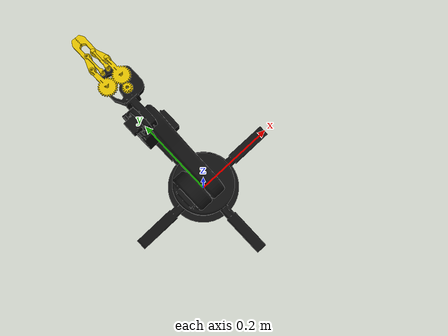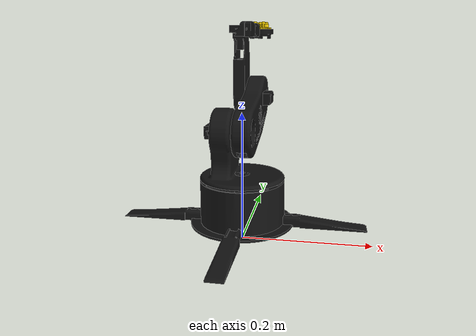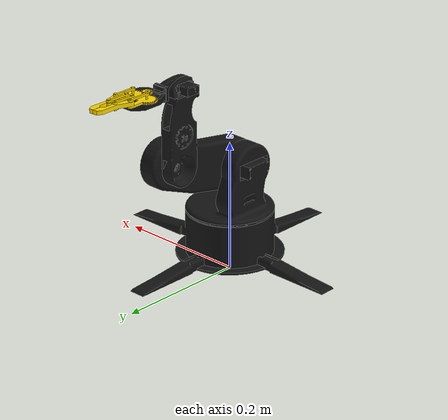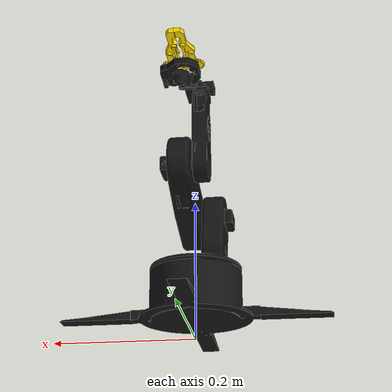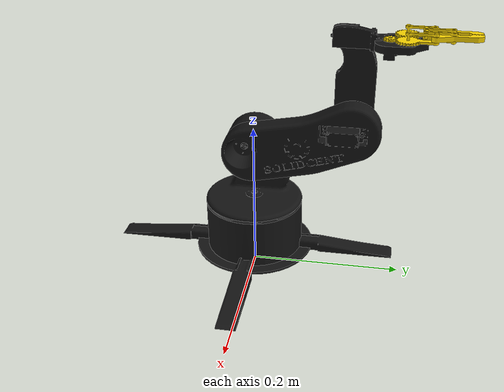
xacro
<?xml version="1.0"?>
<robot xmlns:xacro="http://www.ros.org/wiki/xacro" name="armbot">

    <!-- Launch arguments -->
  <xacro:arg name="is_sim" default="true"/>

  <!-- ===================== PROPERTIES ===================== -->
  <xacro:property name="mesh_dir" value="package://armbot_description/meshes"/>

  <!-- Arm limits: PLACEHOLDERS, set from your hardware -->
  <xacro:property name="arm_lower" value="-1.5707079632"/>
  <xacro:property name="arm_upper" value="1.5707079632"/>
  <xacro:property name="arm_effort" value="5.0"/>
  <xacro:property name="arm_velocity" value="2.0"/>

  <!-- Gear teeth (use decimals so the division stays a float) -->
  <xacro:property name="centre_teeth" value="12.0"/>
  <xacro:property name="side_teeth" value="24.0"/>
  <!-- side gear rotation per 1 rad of centre gear = 12/24 = 0.5 -->
  <xacro:property name="gear_ratio" value="${centre_teeth / side_teeth}"/>

  <!-- Max rotation of each SIDE gear (rad). Measure on the real part.
       The centre gear can turn side_max / gear_ratio. -->
  <xacro:property name="side_max" value="0.9"/>
  <xacro:property name="gripper_effort" value="2.0"/>
  <xacro:property name="gripper_velocity" value="2.0"/>

  <!-- Gear train: centre -> right_gear -> left_gear.
       right_gear turns opposite to the centre, left_gear turns with it.
       If the gripper opens when it should close, flip BOTH signs. -->
  <xacro:property name="right_ratio" value="${-gear_ratio}"/>
  <xacro:property name="left_ratio" value="${gear_ratio}"/>

  <xacro:property name="rfJ_x" value="-1.5231"/>
  <xacro:property name="rfJ_y" value="-0.94735"/>
  <xacro:property name="rfJ_z" value="-0.79558"/>
  <xacro:property name="rfP_x" value="0.0004"/>
  <xacro:property name="rfP_y" value="0.0036"/>
  <xacro:property name="rfP_z" value="-0.031"/>

  <!-- ===================== MATERIALS ===================== -->
  <material name="armbot_black">
    <color rgba="0.08 0.08 0.08 1"/>
  </material>
  <material name="armbot_yellow">
    <color rgba="1.0 0.85 0.0 1"/>
  </material>

  <!-- ===================== MACROS ===================== -->
  <!-- name = link name, mesh = STL file name (without .STL), mat = material.
       ox/oy/oz shift mesh + inertia (default 0). -->
  <xacro:macro name="part" params="name mesh mat mass cx cy cz ixx ixy ixz iyy iyz izz ox:=0 oy:=0 oz:=0">
    <link name="${name}">
      <inertial>
        <origin xyz="${cx+ox} ${cy+oy} ${cz+oz}" rpy="0 0 0"/>
        <mass value="${mass}"/>
        <inertia ixx="${ixx}" ixy="${ixy}" ixz="${ixz}" iyy="${iyy}" iyz="${iyz}" izz="${izz}"/>
      </inertial>
      <visual>
        <origin xyz="${ox} ${oy} ${oz}" rpy="0 0 0"/>
        <geometry>
          <mesh filename="${mesh_dir}/${mesh}.STL"/>
        </geometry>
        <material name="${mat}"/>
      </visual>
      <collision>
        <origin xyz="${ox} ${oy} ${oz}" rpy="0 0 0"/>
        <geometry>
          <mesh filename="${mesh_dir}/${mesh}.STL"/>
        </geometry>
      </collision>
    </link>
  </xacro:macro>

  <xacro:macro name="rev_joint" params="name parent child xyz rpy axis lower upper effort velocity">
    <joint name="${name}" type="revolute">
      <origin xyz="${xyz}" rpy="${rpy}"/>
      <parent link="${parent}"/>
      <child link="${child}"/>
      <axis xyz="${axis}"/>
      <limit lower="${lower}" upper="${upper}" effort="${effort}" velocity="${velocity}"/>
    </joint>
  </xacro:macro>

  <!-- Gripper joint that follows centre_gear_joint (position = multiplier * master) -->
  <xacro:macro name="mimic_joint" params="name parent child xyz axis multiplier">
    <joint name="${name}" type="revolute">
      <origin xyz="${xyz}" rpy="0 0 0"/>
      <parent link="${parent}"/>
      <child link="${child}"/>
      <axis xyz="${axis}"/>
      <limit lower="${-side_max}" upper="${side_max}" effort="${gripper_effort}" velocity="${gripper_velocity}"/>
      <mimic joint="centre_gear_joint" multiplier="${multiplier}" offset="0"/>
    </joint>
  </xacro:macro>

  <!-- ===================== ARM (black) ===================== -->

  <xacro:part name="base_link" mesh="base_link" mat="armbot_black" mass="0.253625690516099"
  cx="1.16795410576227" cy="-1.19443219421231" cz="1.0402184329833"
  ixx="0.000345676528275635" ixy="-1.42994849903459E-11" ixz="5.63068009978521E-07"
  iyy="0.000370214955205273" iyz="-6.71141640350259E-13" izz="0.000597520603618796"
  ox="-1.1668" oy="1.1944" oz="-1.0922"/>

  <xacro:part name="link_1" mesh="link_1" mat="armbot_black" mass="0.250197167053515"
    cx="-0.0215211072658357" cy="0.0430695398034247" cz="-0.00108836930956224"
    ixx="0.000387282666497665" ixy="6.15407457424493E-05" ixz="-3.46302530180302E-06"
    iyy="0.000268259820543635" iyz="-1.32908920501728E-05" izz="0.000352647694230243"/>

  <xacro:part name="link_2" mesh="link_2" mat="armbot_black" mass="0.356315141211562"
    cx="0.00415754178402006" cy="0.0334166930976645" cz="-0.0849568948718107"
    ixx="0.00113352470550218" ixy="-2.7968240778833E-07" ixz="2.42342338737527E-06"
    iyy="0.00095573117462755" iyz="0.000218097697144784" izz="0.000236706859639392"/>

  <xacro:part name="link_3" mesh="link_3" mat="armbot_black" mass="0.0800685236228001"
    cx="-0.00963810517974717" cy="0.0448134717292477" cz="0.00127738631341434"
    ixx="0.000103339776550584" ixy="1.44146194901786E-06" ixz="4.44037869019305E-08"
    iyy="1.99036931851636E-05" iyz="-9.62210474096671E-07" izz="8.94407168149881E-05"/>

  <xacro:part name="link_4" mesh="link_4" mat="armbot_black" mass="0.0141278688267757"
    cx="0.000225769158099132" cy="0.0109433019822112" cz="0.0159340910990631"
    ixx="1.95554546448009E-06" ixy="-1.01498132299861E-07" ixz="-3.21413853728938E-08"
    iyy="1.73483984205993E-06" iyz="-9.03686983886345E-08" izz="6.57133363136111E-07"/>

  <xacro:rev_joint name="joint_1" parent="base_link" child="link_1"
  xyz="0 0 0" rpy="1.5708 0 0" axis="0 1 0"
  lower="${arm_lower}" upper="${arm_upper}" effort="${arm_effort}" velocity="${arm_velocity}"/>

  <xacro:rev_joint name="joint_2" parent="link_1" child="link_2"
    xyz="0 0.05693 0.016527" rpy="0 0 0" axis="1 0 0"
    lower="-0.5000" upper="${arm_upper}" effort="${arm_effort}" velocity="${arm_velocity}"/>

  <xacro:rev_joint name="joint_3" parent="link_2" child="link_3"
    xyz="-0.013803 0.051049 -0.14291" rpy="0 0 0" axis="1 0 0"
    lower="${arm_lower}" upper="${arm_upper}" effort="${arm_effort}" velocity="${arm_velocity}"/>

  <xacro:rev_joint name="joint_4" parent="link_3" child="link_4"
    xyz="-0.010368 0.10446 -0.0051605" rpy="0 0 0" axis="0 1 0"
    lower="${arm_lower}" upper="1.00000" effort="${arm_effort}" velocity="${arm_velocity}"/>

  <xacro:rev_joint name="joint_5" parent="link_4" child="link_5"
    xyz="-1.2789E-05 0.012713 0.022025" rpy="0 0 0" axis="0.99987 -0.013485 0.0083643"
    lower="-0.5000" upper="${arm_upper}" effort="${arm_effort}" velocity="${arm_velocity}"/>

  <!-- ===================== GRIPPER (yellow) ===================== -->
  <!-- link_5 = gripper base -->
  <xacro:part name="link_5" mesh="link_5" mat="armbot_black" mass="0.0396652700264269"
    cx="0.0218656936610016" cy="-0.00374466162024301" cz="-0.0470615006679833"
    ixx="1.08694820116733E-05" ixy="1.32353258694541E-07" ixz="-9.63818228842845E-07"
    iyy="1.59273897038247E-05" iyz="8.71439477412276E-08" izz="6.73665879115032E-06"/>

  <xacro:part name="centre_gear" mesh="centre_gear" mat="armbot_yellow" mass="0.00124932165530755"
    cx="-1.31173336841428E-05" cy="-0.000887697927836717" cz="1.26379266516263E-05"
    ixx="2.66140170996426E-08" ixy="1.86974536589879E-10" ixz="1.04086965182943E-11"
    iyy="4.08900779818099E-08" iyz="6.22753631405733E-11" izz="2.65077841105056E-08"/>

  <!-- NOTE: name and mesh are swapped on purpose (your STL files carry the old labels) -->
  <xacro:part name="right_gear" mesh="left_gear" mat="armbot_yellow" mass="0.00277395733190241"
    cx="0.000222091023160065" cy="0.00371743558174109" cz="-0.00755068369917078"
    ixx="3.52388443037872E-07" ixy="9.95992272458526E-10" ixz="6.00819019534792E-09"
    iyy="4.26226210044565E-07" iyz="-8.10283392068617E-11" izz="8.83702757148541E-08"/>

  <xacro:part name="left_gear" mesh="right_gear" mat="armbot_yellow" mass="0.00264236087567158"
    cx="-4.23348725402395E-05" cy="0.00359328282440807" cz="-0.00643682968782522"
    ixx="3.49270174814913E-07" ixy="1.02779233447843E-09" ixz="-3.77176389314444E-09"
    iyy="4.2546545298723E-07" iyz="5.08681286544487E-11" izz="8.53567917753674E-08"/>

  <!-- right_finger (STL: left_finger): mesh/inertia shifted so the joint sits on the real pin -->
  <xacro:part name="right_finger" mesh="left_finger" mat="armbot_yellow" mass="0.00314141748818274"
    cx="1.518380896581" cy="0.953960530233884" cz="0.739841353063333"
    ixx="9.67945054782393E-07" ixy="5.51751577080869E-10" ixz="-1.33826795404296E-07"
    iyy="1.0088490892867E-06" iyz="1.80485168598537E-09" izz="5.97674218006501E-08"
    ox="${rfJ_x - rfP_x}" oy="${rfJ_y - rfP_y}" oz="${rfJ_z - rfP_z}"/>

  <xacro:part name="left_finger" mesh="right_finger" mat="armbot_yellow" mass="0.00310958056384485"
    cx="0.00593153675541402" cy="0.00319210002504988" cz="-0.0244051071797453"
    ixx="9.44661743993387E-07" ixy="5.86113465466537E-10" ixz="1.42550148775488E-07"
    iyy="9.88113193266036E-07" iyz="-1.92249892901665E-09" izz="6.21247418642663E-08"/>

  <xacro:part name="right_follower" mesh="left_follower" mat="armbot_yellow" mass="0.00103455736182622"
    cx="0.00045163683062488" cy="0.0065400255162027" cz="-0.0154957393843119"
    ixx="1.11895612464977E-07" ixy="-5.38718100297167E-11" ixz="2.44008815238113E-09"
    iyy="1.07901832515372E-07" iyz="-3.29081845831416E-11" izz="7.8968508152867E-09"/>

  <xacro:part name="left_follower" mesh="right_follower" mat="armbot_yellow" mass="0.00091046445200943"
    cx="-0.000297824888826348" cy="-0.00699142371333106" cz="-0.0133858607617861"
    ixx="1.09139868070961E-07" ixy="-1.96485314887736E-11" ixz="-1.58242390428137E-09"
    iyy="1.07683226624114E-07" iyz="2.13413218054678E-11" izz="5.07430815621923E-09"/>

  <!-- MASTER joint: the only gripper joint you command.
       Range = side_max / gear_ratio so the side gears reach side_max. -->
  <xacro:rev_joint name="centre_gear_joint" parent="link_5" child="centre_gear"
    xyz="0.02422 -0.00032664 -0.054321" rpy="0 0 0" axis="0.013485 0.99991 0"
    lower="0" upper="${side_max / gear_ratio}" effort="${gripper_effort}" velocity="${gripper_velocity}"/>

  <!-- Side gears are parented to link_5 so every angle is absolute -->
  <xacro:mimic_joint name="right_gear_joint" parent="link_5" child="right_gear"
    xyz="${0.02422+0.0061665} ${-0.00032664-8.3165E-05} ${-0.054321-0.019949}"
    axis="0.013485 0.99991 0" multiplier="${right_ratio}"/>

  <xacro:mimic_joint name="left_gear_joint" parent="link_5" child="left_gear"
    xyz="${0.02422-0.02083} ${-0.00032664+0.00028092} ${-0.054321-0.020175}"
    axis="0.013485 0.99991 0" multiplier="${left_ratio}"/>

  <!-- Fingers cancel their gear's rotation so the plates stay parallel -->
  <xacro:mimic_joint name="right_finger_joint" parent="right_gear" child="right_finger"
    xyz="${rfP_x} ${rfP_y} ${rfP_z}"
    axis="0.013485 0.99991 0" multiplier="${-right_ratio}"/>

  <xacro:mimic_joint name="left_finger_joint" parent="left_gear" child="left_finger"
    xyz="-0.00039978 0.0035942 -0.030997"
    axis="0.013485 0.99991 0" multiplier="${-left_ratio}"/>

  <!-- Followers: pinned to the gripper base, swing with their gear -->
  <xacro:mimic_joint name="right_follower_joint" parent="link_5" child="right_follower"
    xyz="0.022298 -0.00030072 -0.094739"
    axis="0.013485 0.99991 0" multiplier="${right_ratio}"/>

  <!-- left_follower axis is flipped in the export, so its multiplier is flipped too -->
  <xacro:mimic_joint name="left_follower_joint" parent="link_5" child="left_follower"
    xyz="0.012007 0.0137 -0.094826"
    axis="-0.013485 -0.99991 0" multiplier="${-left_ratio}"/>

  <xacro:include filename="$(find armbot_description)/urdf/armbot_gazebo.urdf.xacro"/>
  <xacro:include filename="$(find armbot_description)/urdf/armbot_ros2_control.xacro"/>

</robot>

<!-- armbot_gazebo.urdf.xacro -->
<robot xmlns:xacro="http://www.ros.org/wiki/xacro" name="armbot">

  <!-- Height of the shoulder (joint_1 / base_link frame) above the floor, in metres.
       PLACEHOLDER: measure from the bottom of your base to the joint_1 axis. -->
  <xacro:property name="mount_z" value="0.10"/>

  <!-- Fix the robot to the Gazebo world -->
  <link name="world"/>
  <joint name="world_to_base" type="fixed">
    <parent link="world"/>
    <child link="base_link"/>
    <origin xyz="0 0 ${mount_z}" rpy="0 0 0"/>
  </joint>

  <!-- Gazebo <-> ros2_control bridge (only when simulating) -->
  <xacro:if value="$(arg is_sim)">
    <gazebo>
      <plugin filename="gz_ros2_control-system" name="gz_ros2_control::GazeboSimROS2ControlPlugin">
        <parameters>$(find armbot_controller)/config/armbot_controllers.yaml</parameters>
      </plugin>
    </gazebo>
  </xacro:if>

</robot>
